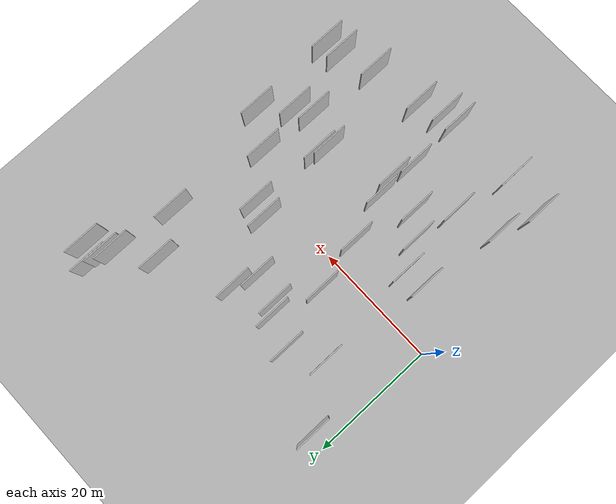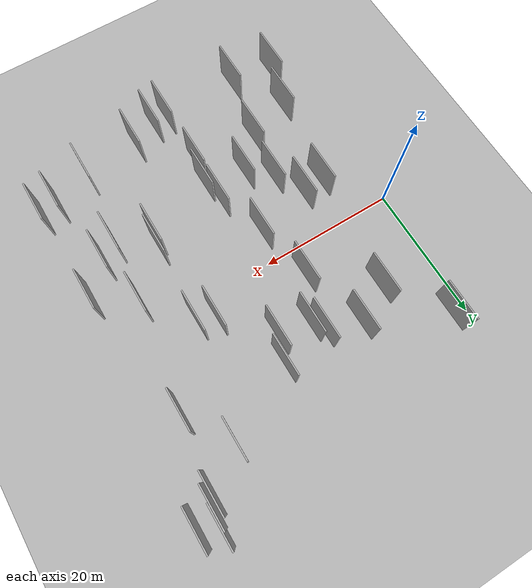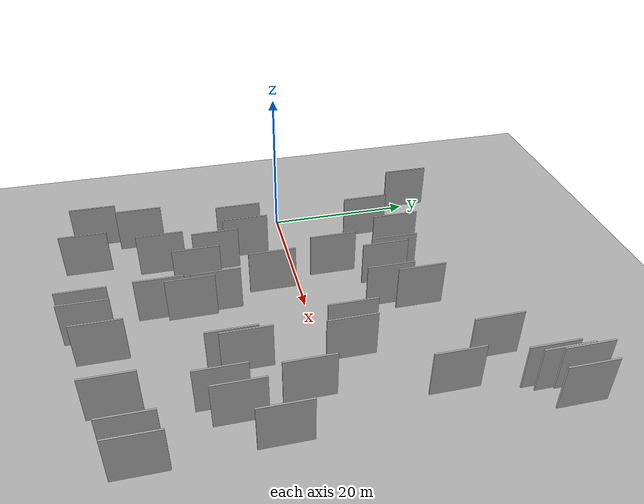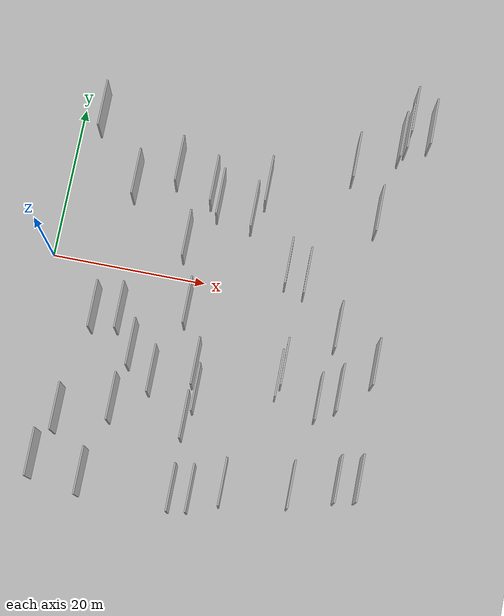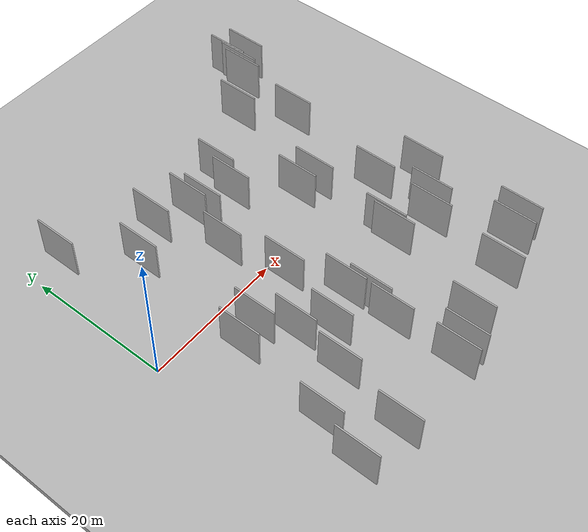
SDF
<?xml version="1.0" encoding="utf-8"?>

<sdf version="1.6">

   <world name="default">

      <gui fullscreen="0">

         <camera name="user_camera">

            <pose>-15 0 4.57585 0 0 0</pose>

            <view_controller>orbit</view_controller>

         </camera>

      </gui>

      <scene>

         <sky>

           <clouds>

             <speed>12</speed>

           </clouds>

         </sky>

         <ambient>0.4 0.4 0.4 1</ambient>

         <background>0.7 0.7 0.7 1</background>

         <shadows>1</shadows>

      </scene>

      <gravity>0 0 -9.8066</gravity>

      <magnetic_field>6e-06 2.3e-05 -4.2e-05</magnetic_field>

      <physics default="0" name="default_physics" type="ode">

         <ode>

            <solver>

               <type>quick</type>

               <iters>10</iters>

               <sor>1.0</sor>

               <use_dynamic_moi_rescaling>0</use_dynamic_moi_rescaling>

            </solver>

            <constraints>

               <cfm>0</cfm>

               <erp>0.2</erp>

               <contact_max_correcting_vel>100</contact_max_correcting_vel>

               <contact_surface_layer>0.001</contact_surface_layer>

            </constraints>

         </ode>

         <max_step_size>0.004</max_step_size>

         <real_time_factor>1</real_time_factor>

         <real_time_update_rate>250</real_time_update_rate>

      </physics>

      <light name="sun" type="directional">

         <cast_shadows>1</cast_shadows>

         <pose>0 0 10 0 0 0</pose>

         <diffuse>0.8 0.8 0.8 1</diffuse>

         <specular>0.2 0.2 0.2 1</specular>

         <attenuation>

            <range>1000</range>

            <constant>0.9</constant>

            <linear>0.01</linear>

            <quadratic>0.001</quadratic>

         </attenuation>

         <direction>-0.5 0.1 -0.9</direction>

      </light>

      <include>

         <name>ground_plane_1</name>

         <uri>model://HANNAS_ground_plane</uri>

         <pose>0 0 0  0 0 0</pose>

      </include>

      <include>

         <name>ground_plane_2</name>

         <uri>model://HANNAS_ground_plane</uri>

         <pose>100 0 0  0 0 0</pose>

      </include>

      <model name="HANNAS_wall_1">

         <static>1</static>

         <pose frame="">41.5938 22.3479 2.5 0.000000 0.000000 1.570796</pose>

         <link name="link">

            <pose frame="">0 0 3.00 0 0 0</pose>

            <collision name="collision">

               <geometry>

                  <box>

                     <size>6.00 0.2 6.00</size>

                  </box>

               </geometry>

               <max_contacts>10</max_contacts>

               <surface>

                  <contact>

                     <ode/>

                  </contact>

                  <bounce/>

                  <friction>

                     <torsional>

                        <ode/>

                     </torsional>

                     <ode/>

                  </friction>

               </surface>

            </collision>

            <visual name="visual">

               <cast_shadows>0</cast_shadows>

               <geometry>

                  <box>

                     <size>6.00 0.2 6.00</size>

                  </box>

               </geometry>

               <material>

                  <script>

                     <uri>model://HANNAS_wall/materials/scripts</uri>

                     <uri>model://HANNAS_wall/materials/textures</uri>

                     <name>vrc/HANNAS_wall</name>

                  </script>

               </material>

            </visual>

            <self_collide>0</self_collide>

            <enable_wind>0</enable_wind>

            <kinematic>0</kinematic>

         </link>

      </model>

      <model name="HANNAS_wall_2">

         <static>1</static>

         <pose frame="">14.1870 13.7563 2.5 0.000000 0.000000 1.570796</pose>

         <link name="link">

            <pose frame="">0 0 3.00 0 0 0</pose>

            <collision name="collision">

               <geometry>

                  <box>

                     <size>6.00 0.2 6.00</size>

                  </box>

               </geometry>

               <max_contacts>10</max_contacts>

               <surface>

                  <contact>

                     <ode/>

                  </contact>

                  <bounce/>

                  <friction>

                     <torsional>

                        <ode/>

                     </torsional>

                     <ode/>

                  </friction>

               </surface>

            </collision>

            <visual name="visual">

               <cast_shadows>0</cast_shadows>

               <geometry>

                  <box>

                     <size>6.00 0.2 6.00</size>

                  </box>

               </geometry>

               <material>

                  <script>

                     <uri>model://HANNAS_wall/materials/scripts</uri>

                     <uri>model://HANNAS_wall/materials/textures</uri>

                     <name>vrc/HANNAS_wall</name>

                  </script>

               </material>

            </visual>

            <self_collide>0</self_collide>

            <enable_wind>0</enable_wind>

            <kinematic>0</kinematic>

         </link>

      </model>

      <model name="HANNAS_wall_3">

         <static>1</static>

         <pose frame="">20.1302 10.5317 2.5 0.000000 0.000000 1.570796</pose>

         <link name="link">

            <pose frame="">0 0 3.00 0 0 0</pose>

            <collision name="collision">

               <geometry>

                  <box>

                     <size>6.00 0.2 6.00</size>

                  </box>

               </geometry>

               <max_contacts>10</max_contacts>

               <surface>

                  <contact>

                     <ode/>

                  </contact>

                  <bounce/>

                  <friction>

                     <torsional>

                        <ode/>

                     </torsional>

                     <ode/>

                  </friction>

               </surface>

            </collision>

            <visual name="visual">

               <cast_shadows>0</cast_shadows>

               <geometry>

                  <box>

                     <size>6.00 0.2 6.00</size>

                  </box>

               </geometry>

               <material>

                  <script>

                     <uri>model://HANNAS_wall/materials/scripts</uri>

                     <uri>model://HANNAS_wall/materials/textures</uri>

                     <name>vrc/HANNAS_wall</name>

                  </script>

               </material>

            </visual>

            <self_collide>0</self_collide>

            <enable_wind>0</enable_wind>

            <kinematic>0</kinematic>

         </link>

      </model>

      <model name="HANNAS_wall_4">

         <static>1</static>

         <pose frame="">3.1007 19.0647 2.5 0.000000 0.000000 1.570796</pose>

         <link name="link">

            <pose frame="">0 0 3.00 0 0 0</pose>

            <collision name="collision">

               <geometry>

                  <box>

                     <size>6.00 0.2 6.00</size>

                  </box>

               </geometry>

               <max_contacts>10</max_contacts>

               <surface>

                  <contact>

                     <ode/>

                  </contact>

                  <bounce/>

                  <friction>

                     <torsional>

                        <ode/>

                     </torsional>

                     <ode/>

                  </friction>

               </surface>

            </collision>

            <visual name="visual">

               <cast_shadows>0</cast_shadows>

               <geometry>

                  <box>

                     <size>6.00 0.2 6.00</size>

                  </box>

               </geometry>

               <material>

                  <script>

                     <uri>model://HANNAS_wall/materials/scripts</uri>

                     <uri>model://HANNAS_wall/materials/textures</uri>

                     <name>vrc/HANNAS_wall</name>

                  </script>

               </material>

            </visual>

            <self_collide>0</self_collide>

            <enable_wind>0</enable_wind>

            <kinematic>0</kinematic>

         </link>

      </model>

      <model name="HANNAS_wall_5">

         <static>1</static>

         <pose frame="">37.0420 -12.6441 2.5 0.000000 0.000000 1.570796</pose>

         <link name="link">

            <pose frame="">0 0 3.00 0 0 0</pose>

            <collision name="collision">

               <geometry>

                  <box>

                     <size>6.00 0.2 6.00</size>

                  </box>

               </geometry>

               <max_contacts>10</max_contacts>

               <surface>

                  <contact>

                     <ode/>

                  </contact>

                  <bounce/>

                  <friction>

                     <torsional>

                        <ode/>

                     </torsional>

                     <ode/>

                  </friction>

               </surface>

            </collision>

            <visual name="visual">

               <cast_shadows>0</cast_shadows>

               <geometry>

                  <box>

                     <size>6.00 0.2 6.00</size>

                  </box>

               </geometry>

               <material>

                  <script>

                     <uri>model://HANNAS_wall/materials/scripts</uri>

                     <uri>model://HANNAS_wall/materials/textures</uri>

                     <name>vrc/HANNAS_wall</name>

                  </script>

               </material>

            </visual>

            <self_collide>0</self_collide>

            <enable_wind>0</enable_wind>

            <kinematic>0</kinematic>

         </link>

      </model>

      <model name="HANNAS_wall_6">

         <static>1</static>

         <pose frame="">39.4426 -11.0978 2.5 0.000000 0.000000 1.570796</pose>

         <link name="link">

            <pose frame="">0 0 3.00 0 0 0</pose>

            <collision name="collision">

               <geometry>

                  <box>

                     <size>6.00 0.2 6.00</size>

                  </box>

               </geometry>

               <max_contacts>10</max_contacts>

               <surface>

                  <contact>

                     <ode/>

                  </contact>

                  <bounce/>

                  <friction>

                     <torsional>

                        <ode/>

                     </torsional>

                     <ode/>

                  </friction>

               </surface>

            </collision>

            <visual name="visual">

               <cast_shadows>0</cast_shadows>

               <geometry>

                  <box>

                     <size>6.00 0.2 6.00</size>

                  </box>

               </geometry>

               <material>

                  <script>

                     <uri>model://HANNAS_wall/materials/scripts</uri>

                     <uri>model://HANNAS_wall/materials/textures</uri>

                     <name>vrc/HANNAS_wall</name>

                  </script>

               </material>

            </visual>

            <self_collide>0</self_collide>

            <enable_wind>0</enable_wind>

            <kinematic>0</kinematic>

         </link>

      </model>

      <model name="HANNAS_wall_7">

         <static>1</static>

         <pose frame="">9.1222 11.0335 2.5 0.000000 0.000000 1.570796</pose>

         <link name="link">

            <pose frame="">0 0 3.00 0 0 0</pose>

            <collision name="collision">

               <geometry>

                  <box>

                     <size>6.00 0.2 6.00</size>

                  </box>

               </geometry>

               <max_contacts>10</max_contacts>

               <surface>

                  <contact>

                     <ode/>

                  </contact>

                  <bounce/>

                  <friction>

                     <torsional>

                        <ode/>

                     </torsional>

                     <ode/>

                  </friction>

               </surface>

            </collision>

            <visual name="visual">

               <cast_shadows>0</cast_shadows>

               <geometry>

                  <box>

                     <size>6.00 0.2 6.00</size>

                  </box>

               </geometry>

               <material>

                  <script>

                     <uri>model://HANNAS_wall/materials/scripts</uri>

                     <uri>model://HANNAS_wall/materials/textures</uri>

                     <name>vrc/HANNAS_wall</name>

                  </script>

               </material>

            </visual>

            <self_collide>0</self_collide>

            <enable_wind>0</enable_wind>

            <kinematic>0</kinematic>

         </link>

      </model>

      <model name="HANNAS_wall_8">

         <static>1</static>

         <pose frame="">11.9133 -17.5112 2.5 0.000000 0.000000 1.570796</pose>

         <link name="link">

            <pose frame="">0 0 3.00 0 0 0</pose>

            <collision name="collision">

               <geometry>

                  <box>

                     <size>6.00 0.2 6.00</size>

                  </box>

               </geometry>

               <max_contacts>10</max_contacts>

               <surface>

                  <contact>

                     <ode/>

                  </contact>

                  <bounce/>

                  <friction>

                     <torsional>

                        <ode/>

                     </torsional>

                     <ode/>

                  </friction>

               </surface>

            </collision>

            <visual name="visual">

               <cast_shadows>0</cast_shadows>

               <geometry>

                  <box>

                     <size>6.00 0.2 6.00</size>

                  </box>

               </geometry>

               <material>

                  <script>

                     <uri>model://HANNAS_wall/materials/scripts</uri>

                     <uri>model://HANNAS_wall/materials/textures</uri>

                     <name>vrc/HANNAS_wall</name>

                  </script>

               </material>

            </visual>

            <self_collide>0</self_collide>

            <enable_wind>0</enable_wind>

            <kinematic>0</kinematic>

         </link>

      </model>

      <model name="HANNAS_wall_9">

         <static>1</static>

         <pose frame="">19.0357 12.0357 2.5 0.000000 0.000000 1.570796</pose>

         <link name="link">

            <pose frame="">0 0 3.00 0 0 0</pose>

            <collision name="collision">

               <geometry>

                  <box>

                     <size>6.00 0.2 6.00</size>

                  </box>

               </geometry>

               <max_contacts>10</max_contacts>

               <surface>

                  <contact>

                     <ode/>

                  </contact>

                  <bounce/>

                  <friction>

                     <torsional>

                        <ode/>

                     </torsional>

                     <ode/>

                  </friction>

               </surface>

            </collision>

            <visual name="visual">

               <cast_shadows>0</cast_shadows>

               <geometry>

                  <box>

                     <size>6.00 0.2 6.00</size>

                  </box>

               </geometry>

               <material>

                  <script>

                     <uri>model://HANNAS_wall/materials/scripts</uri>

                     <uri>model://HANNAS_wall/materials/textures</uri>

                     <name>vrc/HANNAS_wall</name>

                  </script>

               </material>

            </visual>

            <self_collide>0</self_collide>

            <enable_wind>0</enable_wind>

            <kinematic>0</kinematic>

         </link>

      </model>

      <model name="HANNAS_wall_10">

         <static>1</static>

         <pose frame="">21.2546 -11.2656 2.5 0.000000 0.000000 1.570796</pose>

         <link name="link">

            <pose frame="">0 0 3.00 0 0 0</pose>

            <collision name="collision">

               <geometry>

                  <box>

                     <size>6.00 0.2 6.00</size>

                  </box>

               </geometry>

               <max_contacts>10</max_contacts>

               <surface>

                  <contact>

                     <ode/>

                  </contact>

                  <bounce/>

                  <friction>

                     <torsional>

                        <ode/>

                     </torsional>

                     <ode/>

                  </friction>

               </surface>

            </collision>

            <visual name="visual">

               <cast_shadows>0</cast_shadows>

               <geometry>

                  <box>

                     <size>6.00 0.2 6.00</size>

                  </box>

               </geometry>

               <material>

                  <script>

                     <uri>model://HANNAS_wall/materials/scripts</uri>

                     <uri>model://HANNAS_wall/materials/textures</uri>

                     <name>vrc/HANNAS_wall</name>

                  </script>

               </material>

            </visual>

            <self_collide>0</self_collide>

            <enable_wind>0</enable_wind>

            <kinematic>0</kinematic>

         </link>

      </model>

      <model name="HANNAS_wall_11">

         <static>1</static>

         <pose frame="">32.1366 -9.2349 2.5 0.000000 0.000000 1.570796</pose>

         <link name="link">

            <pose frame="">0 0 3.00 0 0 0</pose>

            <collision name="collision">

               <geometry>

                  <box>

                     <size>6.00 0.2 6.00</size>

                  </box>

               </geometry>

               <max_contacts>10</max_contacts>

               <surface>

                  <contact>

                     <ode/>

                  </contact>

                  <bounce/>

                  <friction>

                     <torsional>

                        <ode/>

                     </torsional>

                     <ode/>

                  </friction>

               </surface>

            </collision>

            <visual name="visual">

               <cast_shadows>0</cast_shadows>

               <geometry>

                  <box>

                     <size>6.00 0.2 6.00</size>

                  </box>

               </geometry>

               <material>

                  <script>

                     <uri>model://HANNAS_wall/materials/scripts</uri>

                     <uri>model://HANNAS_wall/materials/textures</uri>

                     <name>vrc/HANNAS_wall</name>

                  </script>

               </material>

            </visual>

            <self_collide>0</self_collide>

            <enable_wind>0</enable_wind>

            <kinematic>0</kinematic>

         </link>

      </model>

      <model name="HANNAS_wall_12">

         <static>1</static>

         <pose frame="">43.7699 -21.5768 2.5 0.000000 0.000000 1.570796</pose>

         <link name="link">

            <pose frame="">0 0 3.00 0 0 0</pose>

            <collision name="collision">

               <geometry>

                  <box>

                     <size>6.00 0.2 6.00</size>

                  </box>

               </geometry>

               <max_contacts>10</max_contacts>

               <surface>

                  <contact>

                     <ode/>

                  </contact>

                  <bounce/>

                  <friction>

                     <torsional>

                        <ode/>

                     </torsional>

                     <ode/>

                  </friction>

               </surface>

            </collision>

            <visual name="visual">

               <cast_shadows>0</cast_shadows>

               <geometry>

                  <box>

                     <size>6.00 0.2 6.00</size>

                  </box>

               </geometry>

               <material>

                  <script>

                     <uri>model://HANNAS_wall/materials/scripts</uri>

                     <uri>model://HANNAS_wall/materials/textures</uri>

                     <name>vrc/HANNAS_wall</name>

                  </script>

               </material>

            </visual>

            <self_collide>0</self_collide>

            <enable_wind>0</enable_wind>

            <kinematic>0</kinematic>

         </link>

      </model>

      <model name="HANNAS_wall_13">

         <static>1</static>

         <pose frame="">42.2726 23.6283 2.5 0.000000 0.000000 1.570796</pose>

         <link name="link">

            <pose frame="">0 0 3.00 0 0 0</pose>

            <collision name="collision">

               <geometry>

                  <box>

                     <size>6.00 0.2 6.00</size>

                  </box>

               </geometry>

               <max_contacts>10</max_contacts>

               <surface>

                  <contact>

                     <ode/>

                  </contact>

                  <bounce/>

                  <friction>

                     <torsional>

                        <ode/>

                     </torsional>

                     <ode/>

                  </friction>

               </surface>

            </collision>

            <visual name="visual">

               <cast_shadows>0</cast_shadows>

               <geometry>

                  <box>

                     <size>6.00 0.2 6.00</size>

                  </box>

               </geometry>

               <material>

                  <script>

                     <uri>model://HANNAS_wall/materials/scripts</uri>

                     <uri>model://HANNAS_wall/materials/textures</uri>

                     <name>vrc/HANNAS_wall</name>

                  </script>

               </material>

            </visual>

            <self_collide>0</self_collide>

            <enable_wind>0</enable_wind>

            <kinematic>0</kinematic>

         </link>

      </model>

      <model name="HANNAS_wall_14">

         <static>1</static>

         <pose frame="">3.5929 -26.1175 2.5 0.000000 0.000000 1.570796</pose>

         <link name="link">

            <pose frame="">0 0 3.00 0 0 0</pose>

            <collision name="collision">

               <geometry>

                  <box>

                     <size>6.00 0.2 6.00</size>

                  </box>

               </geometry>

               <max_contacts>10</max_contacts>

               <surface>

                  <contact>

                     <ode/>

                  </contact>

                  <bounce/>

                  <friction>

                     <torsional>

                        <ode/>

                     </torsional>

                     <ode/>

                  </friction>

               </surface>

            </collision>

            <visual name="visual">

               <cast_shadows>0</cast_shadows>

               <geometry>

                  <box>

                     <size>6.00 0.2 6.00</size>

                  </box>

               </geometry>

               <material>

                  <script>

                     <uri>model://HANNAS_wall/materials/scripts</uri>

                     <uri>model://HANNAS_wall/materials/textures</uri>

                     <name>vrc/HANNAS_wall</name>

                  </script>

               </material>

            </visual>

            <self_collide>0</self_collide>

            <enable_wind>0</enable_wind>

            <kinematic>0</kinematic>

         </link>

      </model>

      <model name="HANNAS_wall_15">

         <static>1</static>

         <pose frame="">25.8494 13.3088 2.5 0.000000 0.000000 1.570796</pose>

         <link name="link">

            <pose frame="">0 0 3.00 0 0 0</pose>

            <collision name="collision">

               <geometry>

                  <box>

                     <size>6.00 0.2 6.00</size>

                  </box>

               </geometry>

               <max_contacts>10</max_contacts>

               <surface>

                  <contact>

                     <ode/>

                  </contact>

                  <bounce/>

                  <friction>

                     <torsional>

                        <ode/>

                     </torsional>

                     <ode/>

                  </friction>

               </surface>

            </collision>

            <visual name="visual">

               <cast_shadows>0</cast_shadows>

               <geometry>

                  <box>

                     <size>6.00 0.2 6.00</size>

                  </box>

               </geometry>

               <material>

                  <script>

                     <uri>model://HANNAS_wall/materials/scripts</uri>

                     <uri>model://HANNAS_wall/materials/textures</uri>

                     <name>vrc/HANNAS_wall</name>

                  </script>

               </material>

            </visual>

            <self_collide>0</self_collide>

            <enable_wind>0</enable_wind>

            <kinematic>0</kinematic>

         </link>

      </model>

      <model name="HANNAS_wall_16">

         <static>1</static>

         <pose frame="">32.8188 2.5948 2.5 0.000000 0.000000 1.570796</pose>

         <link name="link">

            <pose frame="">0 0 3.00 0 0 0</pose>

            <collision name="collision">

               <geometry>

                  <box>

                     <size>6.00 0.2 6.00</size>

                  </box>

               </geometry>

               <max_contacts>10</max_contacts>

               <surface>

                  <contact>

                     <ode/>

                  </contact>

                  <bounce/>

                  <friction>

                     <torsional>

                        <ode/>

                     </torsional>

                     <ode/>

                  </friction>

               </surface>

            </collision>

            <visual name="visual">

               <cast_shadows>0</cast_shadows>

               <geometry>

                  <box>

                     <size>6.00 0.2 6.00</size>

                  </box>

               </geometry>

               <material>

                  <script>

                     <uri>model://HANNAS_wall/materials/scripts</uri>

                     <uri>model://HANNAS_wall/materials/textures</uri>

                     <name>vrc/HANNAS_wall</name>

                  </script>

               </material>

            </visual>

            <self_collide>0</self_collide>

            <enable_wind>0</enable_wind>

            <kinematic>0</kinematic>

         </link>

      </model>

      <model name="HANNAS_wall_17">

         <static>1</static>

         <pose frame="">16.9780 4.4166 2.5 0.000000 0.000000 1.570796</pose>

         <link name="link">

            <pose frame="">0 0 3.00 0 0 0</pose>

            <collision name="collision">

               <geometry>

                  <box>

                     <size>6.00 0.2 6.00</size>

                  </box>

               </geometry>

               <max_contacts>10</max_contacts>

               <surface>

                  <contact>

                     <ode/>

                  </contact>

                  <bounce/>

                  <friction>

                     <torsional>

                        <ode/>

                     </torsional>

                     <ode/>

                  </friction>

               </surface>

            </collision>

            <visual name="visual">

               <cast_shadows>0</cast_shadows>

               <geometry>

                  <box>

                     <size>6.00 0.2 6.00</size>

                  </box>

               </geometry>

               <material>

                  <script>

                     <uri>model://HANNAS_wall/materials/scripts</uri>

                     <uri>model://HANNAS_wall/materials/textures</uri>

                     <name>vrc/HANNAS_wall</name>

                  </script>

               </material>

            </visual>

            <self_collide>0</self_collide>

            <enable_wind>0</enable_wind>

            <kinematic>0</kinematic>

         </link>

      </model>

      <model name="HANNAS_wall_18">

         <static>1</static>

         <pose frame="">16.0654 -13.1951 2.5 0.000000 0.000000 1.570796</pose>

         <link name="link">

            <pose frame="">0 0 3.00 0 0 0</pose>

            <collision name="collision">

               <geometry>

                  <box>

                     <size>6.00 0.2 6.00</size>

                  </box>

               </geometry>

               <max_contacts>10</max_contacts>

               <surface>

                  <contact>

                     <ode/>

                  </contact>

                  <bounce/>

                  <friction>

                     <torsional>

                        <ode/>

                     </torsional>

                     <ode/>

                  </friction>

               </surface>

            </collision>

            <visual name="visual">

               <cast_shadows>0</cast_shadows>

               <geometry>

                  <box>

                     <size>6.00 0.2 6.00</size>

                  </box>

               </geometry>

               <material>

                  <script>

                     <uri>model://HANNAS_wall/materials/scripts</uri>

                     <uri>model://HANNAS_wall/materials/textures</uri>

                     <name>vrc/HANNAS_wall</name>

                  </script>

               </material>

            </visual>

            <self_collide>0</self_collide>

            <enable_wind>0</enable_wind>

            <kinematic>0</kinematic>

         </link>

      </model>

      <model name="HANNAS_wall_19">

         <static>1</static>

         <pose frame="">31.7084 -10.7550 2.5 0.000000 0.000000 1.570796</pose>

         <link name="link">

            <pose frame="">0 0 3.00 0 0 0</pose>

            <collision name="collision">

               <geometry>

                  <box>

                     <size>6.00 0.2 6.00</size>

                  </box>

               </geometry>

               <max_contacts>10</max_contacts>

               <surface>

                  <contact>

                     <ode/>

                  </contact>

                  <bounce/>

                  <friction>

                     <torsional>

                        <ode/>

                     </torsional>

                     <ode/>

                  </friction>

               </surface>

            </collision>

            <visual name="visual">

               <cast_shadows>0</cast_shadows>

               <geometry>

                  <box>

                     <size>6.00 0.2 6.00</size>

                  </box>

               </geometry>

               <material>

                  <script>

                     <uri>model://HANNAS_wall/materials/scripts</uri>

                     <uri>model://HANNAS_wall/materials/textures</uri>

                     <name>vrc/HANNAS_wall</name>

                  </script>

               </material>

            </visual>

            <self_collide>0</self_collide>

            <enable_wind>0</enable_wind>

            <kinematic>0</kinematic>

         </link>

      </model>

      <model name="HANNAS_wall_20">

         <static>1</static>

         <pose frame="">30.2840 3.3775 2.5 0.000000 0.000000 1.570796</pose>

         <link name="link">

            <pose frame="">0 0 3.00 0 0 0</pose>

            <collision name="collision">

               <geometry>

                  <box>

                     <size>6.00 0.2 6.00</size>

                  </box>

               </geometry>

               <max_contacts>10</max_contacts>

               <surface>

                  <contact>

                     <ode/>

                  </contact>

                  <bounce/>

                  <friction>

                     <torsional>

                        <ode/>

                     </torsional>

                     <ode/>

                  </friction>

               </surface>

            </collision>

            <visual name="visual">

               <cast_shadows>0</cast_shadows>

               <geometry>

                  <box>

                     <size>6.00 0.2 6.00</size>

                  </box>

               </geometry>

               <material>

                  <script>

                     <uri>model://HANNAS_wall/materials/scripts</uri>

                     <uri>model://HANNAS_wall/materials/textures</uri>

                     <name>vrc/HANNAS_wall</name>

                  </script>

               </material>

            </visual>

            <self_collide>0</self_collide>

            <enable_wind>0</enable_wind>

            <kinematic>0</kinematic>

         </link>

      </model>

      <model name="HANNAS_wall_21">

         <static>1</static>

         <pose frame="">7.2874 -6.6401 2.5 0.000000 0.000000 1.570796</pose>

         <link name="link">

            <pose frame="">0 0 3.00 0 0 0</pose>

            <collision name="collision">

               <geometry>

                  <box>

                     <size>6.00 0.2 6.00</size>

                  </box>

               </geometry>

               <max_contacts>10</max_contacts>

               <surface>

                  <contact>

                     <ode/>

                  </contact>

                  <bounce/>

                  <friction>

                     <torsional>

                        <ode/>

                     </torsional>

                     <ode/>

                  </friction>

               </surface>

            </collision>

            <visual name="visual">

               <cast_shadows>0</cast_shadows>

               <geometry>

                  <box>

                     <size>6.00 0.2 6.00</size>

                  </box>

               </geometry>

               <material>

                  <script>

                     <uri>model://HANNAS_wall/materials/scripts</uri>

                     <uri>model://HANNAS_wall/materials/textures</uri>

                     <name>vrc/HANNAS_wall</name>

                  </script>

               </material>

            </visual>

            <self_collide>0</self_collide>

            <enable_wind>0</enable_wind>

            <kinematic>0</kinematic>

         </link>

      </model>

      <model name="HANNAS_wall_22">

         <static>1</static>

         <pose frame="">27.4075 -25.1905 2.5 0.000000 0.000000 1.570796</pose>

         <link name="link">

            <pose frame="">0 0 3.00 0 0 0</pose>

            <collision name="collision">

               <geometry>

                  <box>

                     <size>6.00 0.2 6.00</size>

                  </box>

               </geometry>

               <max_contacts>10</max_contacts>

               <surface>

                  <contact>

                     <ode/>

                  </contact>

                  <bounce/>

                  <friction>

                     <torsional>

                        <ode/>

                     </torsional>

                     <ode/>

                  </friction>

               </surface>

            </collision>

            <visual name="visual">

               <cast_shadows>0</cast_shadows>

               <geometry>

                  <box>

                     <size>6.00 0.2 6.00</size>

                  </box>

               </geometry>

               <material>

                  <script>

                     <uri>model://HANNAS_wall/materials/scripts</uri>

                     <uri>model://HANNAS_wall/materials/textures</uri>

                     <name>vrc/HANNAS_wall</name>

                  </script>

               </material>

            </visual>

            <self_collide>0</self_collide>

            <enable_wind>0</enable_wind>

            <kinematic>0</kinematic>

         </link>

      </model>

      <model name="HANNAS_wall_23">

         <static>1</static>

         <pose frame="">23.6392 -26.6956 2.5 0.000000 0.000000 1.570796</pose>

         <link name="link">

            <pose frame="">0 0 3.00 0 0 0</pose>

            <collision name="collision">

               <geometry>

                  <box>

                     <size>6.00 0.2 6.00</size>

                  </box>

               </geometry>

               <max_contacts>10</max_contacts>

               <surface>

                  <contact>

                     <ode/>

                  </contact>

                  <bounce/>

                  <friction>

                     <torsional>

                        <ode/>

                     </torsional>

                     <ode/>

                  </friction>

               </surface>

            </collision>

            <visual name="visual">

               <cast_shadows>0</cast_shadows>

               <geometry>

                  <box>

                     <size>6.00 0.2 6.00</size>

                  </box>

               </geometry>

               <material>

                  <script>

                     <uri>model://HANNAS_wall/materials/scripts</uri>

                     <uri>model://HANNAS_wall/materials/textures</uri>

                     <name>vrc/HANNAS_wall</name>

                  </script>

               </material>

            </visual>

            <self_collide>0</self_collide>

            <enable_wind>0</enable_wind>

            <kinematic>0</kinematic>

         </link>

      </model>

      <model name="HANNAS_wall_24">

         <static>1</static>

         <pose frame="">21.9105 -14.4284 2.5 0.000000 0.000000 1.570796</pose>

         <link name="link">

            <pose frame="">0 0 3.00 0 0 0</pose>

            <collision name="collision">

               <geometry>

                  <box>

                     <size>6.00 0.2 6.00</size>

                  </box>

               </geometry>

               <max_contacts>10</max_contacts>

               <surface>

                  <contact>

                     <ode/>

                  </contact>

                  <bounce/>

                  <friction>

                     <torsional>

                        <ode/>

                     </torsional>

                     <ode/>

                  </friction>

               </surface>

            </collision>

            <visual name="visual">

               <cast_shadows>0</cast_shadows>

               <geometry>

                  <box>

                     <size>6.00 0.2 6.00</size>

                  </box>

               </geometry>

               <material>

                  <script>

                     <uri>model://HANNAS_wall/materials/scripts</uri>

                     <uri>model://HANNAS_wall/materials/textures</uri>

                     <name>vrc/HANNAS_wall</name>

                  </script>

               </material>

            </visual>

            <self_collide>0</self_collide>

            <enable_wind>0</enable_wind>

            <kinematic>0</kinematic>

         </link>

      </model>

      <model name="HANNAS_wall_25">

         <static>1</static>

         <pose frame="">37.8917 -3.3983 2.5 0.000000 0.000000 1.570796</pose>

         <link name="link">

            <pose frame="">0 0 3.00 0 0 0</pose>

            <collision name="collision">

               <geometry>

                  <box>

                     <size>6.00 0.2 6.00</size>

                  </box>

               </geometry>

               <max_contacts>10</max_contacts>

               <surface>

                  <contact>

                     <ode/>

                  </contact>

                  <bounce/>

                  <friction>

                     <torsional>

                        <ode/>

                     </torsional>

                     <ode/>

                  </friction>

               </surface>

            </collision>

            <visual name="visual">

               <cast_shadows>0</cast_shadows>

               <geometry>

                  <box>

                     <size>6.00 0.2 6.00</size>

                  </box>

               </geometry>

               <material>

                  <script>

                     <uri>model://HANNAS_wall/materials/scripts</uri>

                     <uri>model://HANNAS_wall/materials/textures</uri>

                     <name>vrc/HANNAS_wall</name>

                  </script>

               </material>

            </visual>

            <self_collide>0</self_collide>

            <enable_wind>0</enable_wind>

            <kinematic>0</kinematic>

         </link>

      </model>

      <model name="HANNAS_wall_26">

         <static>1</static>

         <pose frame="">41.1756 -22.1572 2.5 0.000000 0.000000 1.570796</pose>

         <link name="link">

            <pose frame="">0 0 3.00 0 0 0</pose>

            <collision name="collision">

               <geometry>

                  <box>

                     <size>6.00 0.2 6.00</size>

                  </box>

               </geometry>

               <max_contacts>10</max_contacts>

               <surface>

                  <contact>

                     <ode/>

                  </contact>

                  <bounce/>

                  <friction>

                     <torsional>

                        <ode/>

                     </torsional>

                     <ode/>

                  </friction>

               </surface>

            </collision>

            <visual name="visual">

               <cast_shadows>0</cast_shadows>

               <geometry>

                  <box>

                     <size>6.00 0.2 6.00</size>

                  </box>

               </geometry>

               <material>

                  <script>

                     <uri>model://HANNAS_wall/materials/scripts</uri>

                     <uri>model://HANNAS_wall/materials/textures</uri>

                     <name>vrc/HANNAS_wall</name>

                  </script>

               </material>

            </visual>

            <self_collide>0</self_collide>

            <enable_wind>0</enable_wind>

            <kinematic>0</kinematic>

         </link>

      </model>

      <model name="HANNAS_wall_27">

         <static>1</static>

         <pose frame="">43.2868 -7.0839 2.5 0.000000 0.000000 1.570796</pose>

         <link name="link">

            <pose frame="">0 0 3.00 0 0 0</pose>

            <collision name="collision">

               <geometry>

                  <box>

                     <size>6.00 0.2 6.00</size>

                  </box>

               </geometry>

               <max_contacts>10</max_contacts>

               <surface>

                  <contact>

                     <ode/>

                  </contact>

                  <bounce/>

                  <friction>

                     <torsional>

                        <ode/>

                     </torsional>

                     <ode/>

                  </friction>

               </surface>

            </collision>

            <visual name="visual">

               <cast_shadows>0</cast_shadows>

               <geometry>

                  <box>

                     <size>6.00 0.2 6.00</size>

                  </box>

               </geometry>

               <material>

                  <script>

                     <uri>model://HANNAS_wall/materials/scripts</uri>

                     <uri>model://HANNAS_wall/materials/textures</uri>

                     <name>vrc/HANNAS_wall</name>

                  </script>

               </material>

            </visual>

            <self_collide>0</self_collide>

            <enable_wind>0</enable_wind>

            <kinematic>0</kinematic>

         </link>

      </model>

      <model name="HANNAS_wall_28">

         <static>1</static>

         <pose frame="">9.9451 -27.1715 2.5 0.000000 0.000000 1.570796</pose>

         <link name="link">

            <pose frame="">0 0 3.00 0 0 0</pose>

            <collision name="collision">

               <geometry>

                  <box>

                     <size>6.00 0.2 6.00</size>

                  </box>

               </geometry>

               <max_contacts>10</max_contacts>

               <surface>

                  <contact>

                     <ode/>

                  </contact>

                  <bounce/>

                  <friction>

                     <torsional>

                        <ode/>

                     </torsional>

                     <ode/>

                  </friction>

               </surface>

            </collision>

            <visual name="visual">

               <cast_shadows>0</cast_shadows>

               <geometry>

                  <box>

                     <size>6.00 0.2 6.00</size>

                  </box>

               </geometry>

               <material>

                  <script>

                     <uri>model://HANNAS_wall/materials/scripts</uri>

                     <uri>model://HANNAS_wall/materials/textures</uri>

                     <name>vrc/HANNAS_wall</name>

                  </script>

               </material>

            </visual>

            <self_collide>0</self_collide>

            <enable_wind>0</enable_wind>

            <kinematic>0</kinematic>

         </link>

      </model>

      <model name="HANNAS_wall_29">

         <static>1</static>

         <pose frame="">18.7530 -3.9235 2.5 0.000000 0.000000 1.570796</pose>

         <link name="link">

            <pose frame="">0 0 3.00 0 0 0</pose>

            <collision name="collision">

               <geometry>

                  <box>

                     <size>6.00 0.2 6.00</size>

                  </box>

               </geometry>

               <max_contacts>10</max_contacts>

               <surface>

                  <contact>

                     <ode/>

                  </contact>

                  <bounce/>

                  <friction>

                     <torsional>

                        <ode/>

                     </torsional>

                     <ode/>

                  </friction>

               </surface>

            </collision>

            <visual name="visual">

               <cast_shadows>0</cast_shadows>

               <geometry>

                  <box>

                     <size>6.00 0.2 6.00</size>

                  </box>

               </geometry>

               <material>

                  <script>

                     <uri>model://HANNAS_wall/materials/scripts</uri>

                     <uri>model://HANNAS_wall/materials/textures</uri>

                     <name>vrc/HANNAS_wall</name>

                  </script>

               </material>

            </visual>

            <self_collide>0</self_collide>

            <enable_wind>0</enable_wind>

            <kinematic>0</kinematic>

         </link>

      </model>

      <model name="HANNAS_wall_30">

         <static>1</static>

         <pose frame="">21.3419 -27.0411 2.5 0.000000 0.000000 1.570796</pose>

         <link name="link">

            <pose frame="">0 0 3.00 0 0 0</pose>

            <collision name="collision">

               <geometry>

                  <box>

                     <size>6.00 0.2 6.00</size>

                  </box>

               </geometry>

               <max_contacts>10</max_contacts>

               <surface>

                  <contact>

                     <ode/>

                  </contact>

                  <bounce/>

                  <friction>

                     <torsional>

                        <ode/>

                     </torsional>

                     <ode/>

                  </friction>

               </surface>

            </collision>

            <visual name="visual">

               <cast_shadows>0</cast_shadows>

               <geometry>

                  <box>

                     <size>6.00 0.2 6.00</size>

                  </box>

               </geometry>

               <material>

                  <script>

                     <uri>model://HANNAS_wall/materials/scripts</uri>

                     <uri>model://HANNAS_wall/materials/textures</uri>

                     <name>vrc/HANNAS_wall</name>

                  </script>

               </material>

            </visual>

            <self_collide>0</self_collide>

            <enable_wind>0</enable_wind>

            <kinematic>0</kinematic>

         </link>

      </model>

      <model name="HANNAS_wall_31">

         <static>1</static>

         <pose frame="">40.2906 12.2112 2.5 0.000000 0.000000 1.570796</pose>

         <link name="link">

            <pose frame="">0 0 3.00 0 0 0</pose>

            <collision name="collision">

               <geometry>

                  <box>

                     <size>6.00 0.2 6.00</size>

                  </box>

               </geometry>

               <max_contacts>10</max_contacts>

               <surface>

                  <contact>

                     <ode/>

                  </contact>

                  <bounce/>

                  <friction>

                     <torsional>

                        <ode/>

                     </torsional>

                     <ode/>

                  </friction>

               </surface>

            </collision>

            <visual name="visual">

               <cast_shadows>0</cast_shadows>

               <geometry>

                  <box>

                     <size>6.00 0.2 6.00</size>

                  </box>

               </geometry>

               <material>

                  <script>

                     <uri>model://HANNAS_wall/materials/scripts</uri>

                     <uri>model://HANNAS_wall/materials/textures</uri>

                     <name>vrc/HANNAS_wall</name>

                  </script>

               </material>

            </visual>

            <self_collide>0</self_collide>

            <enable_wind>0</enable_wind>

            <kinematic>0</kinematic>

         </link>

      </model>

      <model name="HANNAS_wall_32">

         <static>1</static>

         <pose frame="">12.8878 -10.4213 2.5 0.000000 0.000000 1.570796</pose>

         <link name="link">

            <pose frame="">0 0 3.00 0 0 0</pose>

            <collision name="collision">

               <geometry>

                  <box>

                     <size>6.00 0.2 6.00</size>

                  </box>

               </geometry>

               <max_contacts>10</max_contacts>

               <surface>

                  <contact>

                     <ode/>

                  </contact>

                  <bounce/>

                  <friction>

                     <torsional>

                        <ode/>

                     </torsional>

                     <ode/>

                  </friction>

               </surface>

            </collision>

            <visual name="visual">

               <cast_shadows>0</cast_shadows>

               <geometry>

                  <box>

                     <size>6.00 0.2 6.00</size>

                  </box>

               </geometry>

               <material>

                  <script>

                     <uri>model://HANNAS_wall/materials/scripts</uri>

                     <uri>model://HANNAS_wall/materials/textures</uri>

                     <name>vrc/HANNAS_wall</name>

                  </script>

               </material>

            </visual>

            <self_collide>0</self_collide>

            <enable_wind>0</enable_wind>

            <kinematic>0</kinematic>

         </link>

      </model>

      <model name="HANNAS_wall_33">

         <static>1</static>

         <pose frame="">45.0972 24.7267 2.5 0.000000 0.000000 1.570796</pose>

         <link name="link">

            <pose frame="">0 0 3.00 0 0 0</pose>

            <collision name="collision">

               <geometry>

                  <box>

                     <size>6.00 0.2 6.00</size>

                  </box>

               </geometry>

               <max_contacts>10</max_contacts>

               <surface>

                  <contact>

                     <ode/>

                  </contact>

                  <bounce/>

                  <friction>

                     <torsional>

                        <ode/>

                     </torsional>

                     <ode/>

                  </friction>

               </surface>

            </collision>

            <visual name="visual">

               <cast_shadows>0</cast_shadows>

               <geometry>

                  <box>

                     <size>6.00 0.2 6.00</size>

                  </box>

               </geometry>

               <material>

                  <script>

                     <uri>model://HANNAS_wall/materials/scripts</uri>

                     <uri>model://HANNAS_wall/materials/textures</uri>

                     <name>vrc/HANNAS_wall</name>

                  </script>

               </material>

            </visual>

            <self_collide>0</self_collide>

            <enable_wind>0</enable_wind>

            <kinematic>0</kinematic>

         </link>

      </model>

      <model name="HANNAS_wall_34">

         <static>1</static>

         <pose frame="">36.2402 18.5439 2.5 0.000000 0.000000 1.570796</pose>

         <link name="link">

            <pose frame="">0 0 3.00 0 0 0</pose>

            <collision name="collision">

               <geometry>

                  <box>

                     <size>6.00 0.2 6.00</size>

                  </box>

               </geometry>

               <max_contacts>10</max_contacts>

               <surface>

                  <contact>

                     <ode/>

                  </contact>

                  <bounce/>

                  <friction>

                     <torsional>

                        <ode/>

                     </torsional>

                     <ode/>

                  </friction>

               </surface>

            </collision>

            <visual name="visual">

               <cast_shadows>0</cast_shadows>

               <geometry>

                  <box>

                     <size>6.00 0.2 6.00</size>

                  </box>

               </geometry>

               <material>

                  <script>

                     <uri>model://HANNAS_wall/materials/scripts</uri>

                     <uri>model://HANNAS_wall/materials/textures</uri>

                     <name>vrc/HANNAS_wall</name>

                  </script>

               </material>

            </visual>

            <self_collide>0</self_collide>

            <enable_wind>0</enable_wind>

            <kinematic>0</kinematic>

         </link>

      </model>

      <model name="HANNAS_wall_35">

         <static>1</static>

         <pose frame="">5.3974 -20.0324 2.5 0.000000 0.000000 1.570796</pose>

         <link name="link">

            <pose frame="">0 0 3.00 0 0 0</pose>

            <collision name="collision">

               <geometry>

                  <box>

                     <size>6.00 0.2 6.00</size>

                  </box>

               </geometry>

               <max_contacts>10</max_contacts>

               <surface>

                  <contact>

                     <ode/>

                  </contact>

                  <bounce/>

                  <friction>

                     <torsional>

                        <ode/>

                     </torsional>

                     <ode/>

                  </friction>

               </surface>

            </collision>

            <visual name="visual">

               <cast_shadows>0</cast_shadows>

               <geometry>

                  <box>

                     <size>6.00 0.2 6.00</size>

                  </box>

               </geometry>

               <material>

                  <script>

                     <uri>model://HANNAS_wall/materials/scripts</uri>

                     <uri>model://HANNAS_wall/materials/textures</uri>

                     <name>vrc/HANNAS_wall</name>

                  </script>

               </material>

            </visual>

            <self_collide>0</self_collide>

            <enable_wind>0</enable_wind>

            <kinematic>0</kinematic>

         </link>

      </model>

      <model name="HANNAS_wall_36">

         <static>1</static>

         <pose frame="">24.6844 9.7603 2.5 0.000000 0.000000 1.570796</pose>

         <link name="link">

            <pose frame="">0 0 3.00 0 0 0</pose>

            <collision name="collision">

               <geometry>

                  <box>

                     <size>6.00 0.2 6.00</size>

                  </box>

               </geometry>

               <max_contacts>10</max_contacts>

               <surface>

                  <contact>

                     <ode/>

                  </contact>

                  <bounce/>

                  <friction>

                     <torsional>

                        <ode/>

                     </torsional>

                     <ode/>

                  </friction>

               </surface>

            </collision>

            <visual name="visual">

               <cast_shadows>0</cast_shadows>

               <geometry>

                  <box>

                     <size>6.00 0.2 6.00</size>

                  </box>

               </geometry>

               <material>

                  <script>

                     <uri>model://HANNAS_wall/materials/scripts</uri>

                     <uri>model://HANNAS_wall/materials/textures</uri>

                     <name>vrc/HANNAS_wall</name>

                  </script>

               </material>

            </visual>

            <self_collide>0</self_collide>

            <enable_wind>0</enable_wind>

            <kinematic>0</kinematic>

         </link>

      </model>

      <model name="HANNAS_wall_37">

         <static>1</static>

         <pose frame="">10.5615 -6.1510 2.5 0.000000 0.000000 1.570796</pose>

         <link name="link">

            <pose frame="">0 0 3.00 0 0 0</pose>

            <collision name="collision">

               <geometry>

                  <box>

                     <size>6.00 0.2 6.00</size>

                  </box>

               </geometry>

               <max_contacts>10</max_contacts>

               <surface>

                  <contact>

                     <ode/>

                  </contact>

                  <bounce/>

                  <friction>

                     <torsional>

                        <ode/>

                     </torsional>

                     <ode/>

                  </friction>

               </surface>

            </collision>

            <visual name="visual">

               <cast_shadows>0</cast_shadows>

               <geometry>

                  <box>

                     <size>6.00 0.2 6.00</size>

                  </box>

               </geometry>

               <material>

                  <script>

                     <uri>model://HANNAS_wall/materials/scripts</uri>

                     <uri>model://HANNAS_wall/materials/textures</uri>

                     <name>vrc/HANNAS_wall</name>

                  </script>

               </material>

            </visual>

            <self_collide>0</self_collide>

            <enable_wind>0</enable_wind>

            <kinematic>0</kinematic>

         </link>

      </model>

      <model name="HANNAS_wall_38">

         <static>1</static>

         <pose frame="">42.4942 25.8898 2.5 0.000000 0.000000 1.570796</pose>

         <link name="link">

            <pose frame="">0 0 3.00 0 0 0</pose>

            <collision name="collision">

               <geometry>

                  <box>

                     <size>6.00 0.2 6.00</size>

                  </box>

               </geometry>

               <max_contacts>10</max_contacts>

               <surface>

                  <contact>

                     <ode/>

                  </contact>

                  <bounce/>

                  <friction>

                     <torsional>

                        <ode/>

                     </torsional>

                     <ode/>

                  </friction>

               </surface>

            </collision>

            <visual name="visual">

               <cast_shadows>0</cast_shadows>

               <geometry>

                  <box>

                     <size>6.00 0.2 6.00</size>

                  </box>

               </geometry>

               <material>

                  <script>

                     <uri>model://HANNAS_wall/materials/scripts</uri>

                     <uri>model://HANNAS_wall/materials/textures</uri>

                     <name>vrc/HANNAS_wall</name>

                  </script>

               </material>

            </visual>

            <self_collide>0</self_collide>

            <enable_wind>0</enable_wind>

            <kinematic>0</kinematic>

         </link>

      </model>

      <model name="HANNAS_wall_39">

         <static>1</static>

         <pose frame="">35.6832 -23.9121 2.5 0.000000 0.000000 1.570796</pose>

         <link name="link">

            <pose frame="">0 0 3.00 0 0 0</pose>

            <collision name="collision">

               <geometry>

                  <box>

                     <size>6.00 0.2 6.00</size>

                  </box>

               </geometry>

               <max_contacts>10</max_contacts>

               <surface>

                  <contact>

                     <ode/>

                  </contact>

                  <bounce/>

                  <friction>

                     <torsional>

                        <ode/>

                     </torsional>

                     <ode/>

                  </friction>

               </surface>

            </collision>

            <visual name="visual">

               <cast_shadows>0</cast_shadows>

               <geometry>

                  <box>

                     <size>6.00 0.2 6.00</size>

                  </box>

               </geometry>

               <material>

                  <script>

                     <uri>model://HANNAS_wall/materials/scripts</uri>

                     <uri>model://HANNAS_wall/materials/textures</uri>

                     <name>vrc/HANNAS_wall</name>

                  </script>

               </material>

            </visual>

            <self_collide>0</self_collide>

            <enable_wind>0</enable_wind>

            <kinematic>0</kinematic>

         </link>

      </model>

      <model name="HANNAS_wall_40">

         <static>1</static>

         <pose frame="">21.1895 -18.0361 2.5 0.000000 0.000000 1.570796</pose>

         <link name="link">

            <pose frame="">0 0 3.00 0 0 0</pose>

            <collision name="collision">

               <geometry>

                  <box>

                     <size>6.00 0.2 6.00</size>

                  </box>

               </geometry>

               <max_contacts>10</max_contacts>

               <surface>

                  <contact>

                     <ode/>

                  </contact>

                  <bounce/>

                  <friction>

                     <torsional>

                        <ode/>

                     </torsional>

                     <ode/>

                  </friction>

               </surface>

            </collision>

            <visual name="visual">

               <cast_shadows>0</cast_shadows>

               <geometry>

                  <box>

                     <size>6.00 0.2 6.00</size>

                  </box>

               </geometry>

               <material>

                  <script>

                     <uri>model://HANNAS_wall/materials/scripts</uri>

                     <uri>model://HANNAS_wall/materials/textures</uri>

                     <name>vrc/HANNAS_wall</name>

                  </script>

               </material>

            </visual>

            <self_collide>0</self_collide>

            <enable_wind>0</enable_wind>

            <kinematic>0</kinematic>

         </link>

      </model>

   </world>

</sdf>
